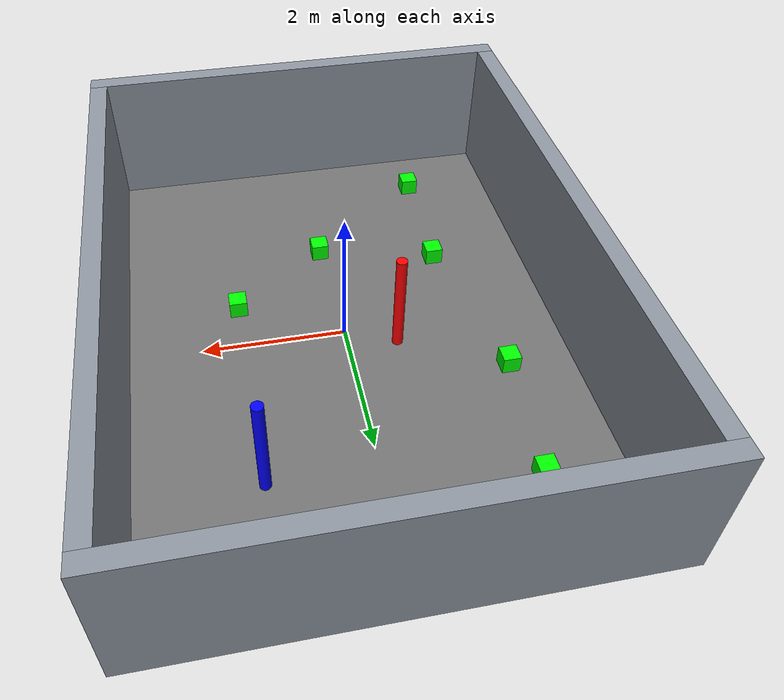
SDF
<?xml version='1.0' encoding='utf-8'?>
<sdf version="1.9">

  <world name="random_world">
    <scene>
      <ambient>0.65 0.65 0.65 1</ambient>
      <background>0.82 0.88 0.95 1</background>
      <shadows>true</shadows>
    </scene>

    <physics name="fast" type="ignored">
      <max_step_size>0.01</max_step_size>
      <real_time_update_rate>400</real_time_update_rate>
      <real_time_factor>2.0</real_time_factor>
    </physics>

    <plugin filename="ignition-gazebo-physics-system" name="ignition::gazebo::systems::Physics">
      <include_entity_names>true</include_entity_names>
    </plugin>
    <plugin filename="ignition-gazebo-sensors-system" name="ignition::gazebo::systems::Sensors">
      <render_engine>ogre2</render_engine>
    </plugin>
    <plugin filename="ignition-gazebo-user-commands-system" name="ignition::gazebo::systems::UserCommands" />
    <plugin filename="libignition-gazebo-contact-system.so" name="ignition::gazebo::systems::Contact">
      <topic>/world/random_world/physics/contacts</topic>
    </plugin>
    <plugin filename="ignition-gazebo-scene-broadcaster-system" name="ignition::gazebo::systems::SceneBroadcaster" />

    <light name="sun" type="directional">
      <pose>0 0 10 0 0 0</pose>
      <cast_shadows>true</cast_shadows>
      <intensity>1</intensity>
      <direction>-0.5 0.5 -1</direction>
      <diffuse>1 1 1 1</diffuse>
      <specular>0.1 0.1 0.1 1</specular>
      <attenuation>
        <range>20</range><linear>0.1</linear><constant>0.9</constant><quadratic>0.01</quadratic>
      </attenuation>
    </light>

    <model name="ground_plane">
      <static>true</static>
      <pose>0 0 -0.01 0 0 0</pose>
      <link name="link">
        <collision name="collision">
          <geometry><box><size>6 8 0.02</size></box></geometry>
        </collision>
        <visual name="visual">
          <geometry><box><size>6 8 0.02</size></box></geometry>
          <material>
            <ambient>0.45 0.45 0.45 1</ambient>
            <diffuse>0.45 0.45 0.45 1</diffuse>
          </material>
        </visual>
      </link>
    </model>

    <model name="north_wall">
      <static>true</static><pose>0 4.125 1 0 0 0</pose>
      <link name="link">
        <collision name="collision"><geometry><box><size>6.5 0.25 2</size></box></geometry></collision>
        <visual name="visual"><geometry><box><size>6.5 0.25 2</size></box></geometry><material><ambient>0.55 0.58 0.62 1</ambient><diffuse>0.55 0.58 0.62 1</diffuse></material></visual>
      </link>
    </model>
    <model name="south_wall">
      <static>true</static><pose>0 -4.125 1 0 0 0</pose>
      <link name="link">
        <collision name="collision"><geometry><box><size>6.5 0.25 2</size></box></geometry></collision>
        <visual name="visual"><geometry><box><size>6.5 0.25 2</size></box></geometry><material><ambient>0.55 0.58 0.62 1</ambient><diffuse>0.55 0.58 0.62 1</diffuse></material></visual>
      </link>
    </model>
    <model name="east_wall">
      <static>true</static><pose>3.125 0 1 0 0 0</pose>
      <link name="link">
        <collision name="collision"><geometry><box><size>0.25 8 2</size></box></geometry></collision>
        <visual name="visual"><geometry><box><size>0.25 8 2</size></box></geometry><material><ambient>0.55 0.58 0.62 1</ambient><diffuse>0.55 0.58 0.62 1</diffuse></material></visual>
      </link>
    </model>
    <model name="west_wall">
      <static>true</static><pose>-3.125 0 1 0 0 0</pose>
      <link name="link">
        <collision name="collision"><geometry><box><size>0.25 8 2</size></box></geometry></collision>
        <visual name="visual"><geometry><box><size>0.25 8 2</size></box></geometry><material><ambient>0.55 0.58 0.62 1</ambient><diffuse>0.55 0.58 0.62 1</diffuse></material></visual>
      </link>
    </model>

    <model name="red_box"><pose>-0.695951 0.307933 0.006 0 0 0.37</pose><static>true</static><link name="link"><visual name="visual"><pose>0 0 0.75 0 0 0</pose><visibility_flags>4</visibility_flags><geometry><cylinder><radius>0.075</radius><length>1.5</length></cylinder></geometry><material><ambient>1 0 0 1</ambient><diffuse>1 0 0 1</diffuse><emissive>1 0 0 1</emissive></material></visual></link></model>
    <model name="blue_box"><pose>1.406355 2.317161 0.006 0 0 2.31</pose><static>true</static><link name="link"><visual name="visual"><pose>0 0 0.75 0 0 0</pose><visibility_flags>4</visibility_flags><geometry><cylinder><radius>0.075</radius><length>1.5</length></cylinder></geometry><material><ambient>0 0 1 1</ambient><diffuse>0 0 1 1</diffuse><emissive>0 0 1 1</emissive></material></visual></link></model>

    <model name="generic_delivery_box_0"><pose>-1.634668 -1.328708 0.125 0 0 0</pose><static>true</static><link name="link"><collision name="collision"><geometry><box><size>0.25 0.25 0.25</size></box></geometry></collision><visual name="visual"><geometry><box><size>0.25 0.25 0.25</size></box></geometry><material><ambient>0 1 0 1</ambient><diffuse>0 1 0 1</diffuse></material></visual></link></model>
    <model name="generic_delivery_box_1"><pose>-2.080400 1.022598 0.125 0 0 0</pose><static>true</static><link name="link"><collision name="collision"><geometry><box><size>0.25 0.25 0.25</size></box></geometry></collision><visual name="visual"><geometry><box><size>0.25 0.25 0.25</size></box></geometry><material><ambient>0 1 0 1</ambient><diffuse>0 1 0 1</diffuse></material></visual></link></model>
    <model name="generic_delivery_box_2"><pose>0.071428 -1.741959 0.125 0 0 0</pose><static>true</static><link name="link"><collision name="collision"><geometry><box><size>0.25 0.25 0.25</size></box></geometry></collision><visual name="visual"><geometry><box><size>0.25 0.25 0.25</size></box></geometry><material><ambient>0 1 0 1</ambient><diffuse>0 1 0 1</diffuse></material></visual></link></model>
    <model name="generic_delivery_box_3"><pose>-1.931964 2.808967 0.125 0 0 0</pose><static>true</static><link name="link"><collision name="collision"><geometry><box><size>0.25 0.25 0.25</size></box></geometry></collision><visual name="visual"><geometry><box><size>0.25 0.25 0.25</size></box></geometry><material><ambient>0 1 0 1</ambient><diffuse>0 1 0 1</diffuse></material></visual></link></model>
    <model name="generic_delivery_box_4"><pose>1.434845 -0.722171 0.125 0 0 0</pose><static>true</static><link name="link"><collision name="collision"><geometry><box><size>0.25 0.25 0.25</size></box></geometry></collision><visual name="visual"><geometry><box><size>0.25 0.25 0.25</size></box></geometry><material><ambient>0 1 0 1</ambient><diffuse>0 1 0 1</diffuse></material></visual></link></model>
    <model name="generic_delivery_box_5"><pose>-1.692906 -3.141400 0.125 0 0 0</pose><static>true</static><link name="link"><collision name="collision"><geometry><box><size>0.25 0.25 0.25</size></box></geometry></collision><visual name="visual"><geometry><box><size>0.25 0.25 0.25</size></box></geometry><material><ambient>0 1 0 1</ambient><diffuse>0 1 0 1</diffuse></material></visual></link></model>
    <model name="top_view_camera">
      <static>true</static>
      <pose>0 0 12 0 1.57079632679 0</pose>
      <link name="link">
        <sensor name="top_view_camera" type="camera">
          <always_on>true</always_on>
          <update_rate>30</update_rate>
          <topic>top_view_camera/image</topic>
          <camera>
            <horizontal_fov>1.35</horizontal_fov>
            <image>
              <width>1280</width>
              <height>720</height>
              <format>R8G8B8</format>
            </image>
            <clip>
              <near>0.1</near>
              <far>100</far>
            </clip>
          </camera>
        </sensor>
      </link>
    </model>
  </world>
</sdf>
